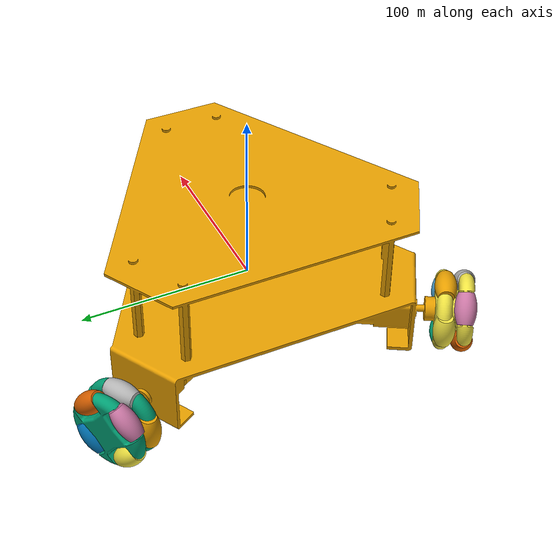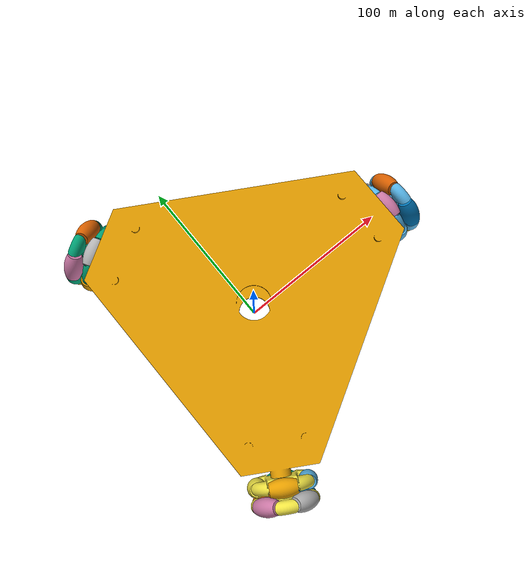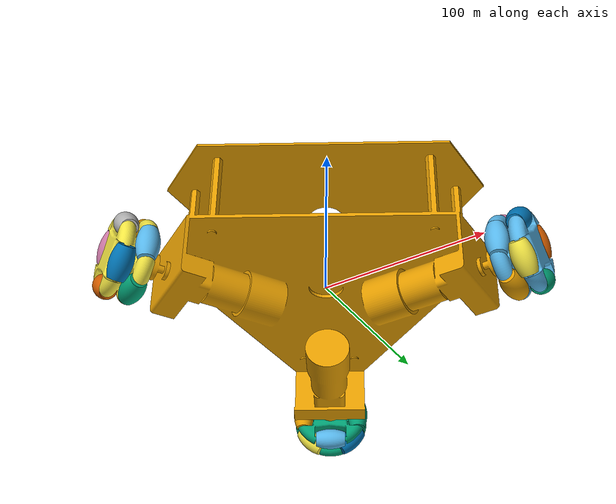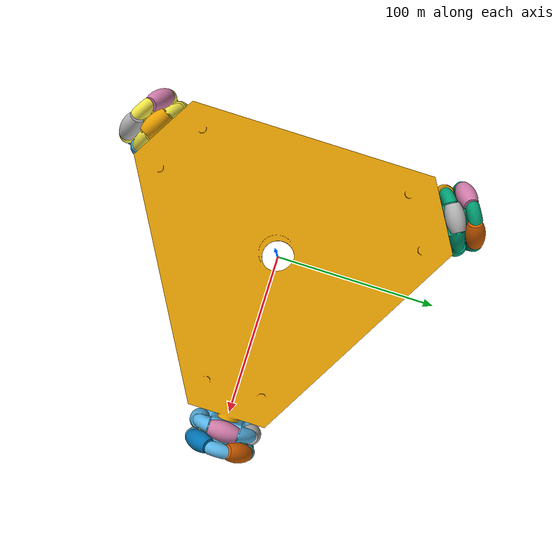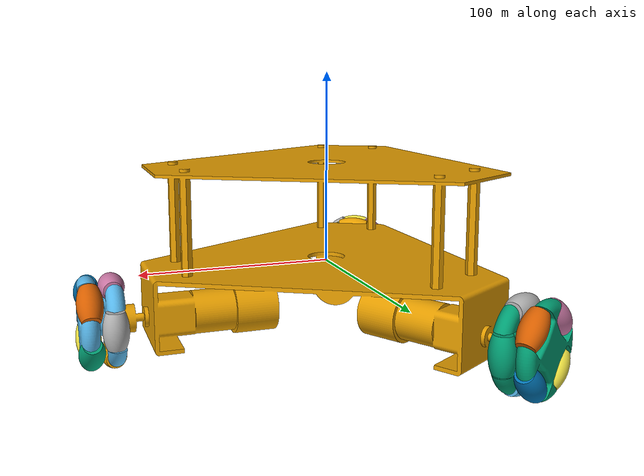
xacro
<?xml version="1.0" encoding="utf-8"?>
<robot name="robot" xmlns:xacro="http://www.ros.org/wiki/xacro">

  <gazebo>
    <plugin name="gazebo_ros_control" filename="libgazebo_ros_control.so">
      <robotNamespace>/omnirobot</robotNamespace>
    </plugin>
  </gazebo>

  <link name="base_link">
    <visual>
      <geometry>
        <mesh filename="package://holonome_description/meshes/Bati.stl"/>
      </geometry>
      <origin xyz="0 0 0" rpy="${pi/2} 0 ${pi/2 + 2*pi/3}"/>
    </visual>

    <collision>
      <geometry>
        <mesh filename="package://holonome_description/meshes/Bati.stl"/>
      </geometry>
      <origin xyz="0 0 0" rpy="${pi/2} 0 ${pi/2 + 2*pi/3}"/>
    </collision>

  </link>

  <link name="wheel_front">
    <visual>
      <geometry>
        <mesh filename="package://holonome_description/meshes/roue.stl"/>
      </geometry>
      <origin xyz="0 0 0" rpy="0 ${pi/2} 0"/>
    </visual>
    <collision>
      <geometry>
        <mesh filename="package://holonome_description/meshes/roue.stl"/>
      </geometry>
      <origin xyz="117.2 0 -21.4" rpy="0 ${pi/2} 0"/>
    </collision>
  </link>

  <joint name="wheel_front_joint" type="continuous">
    <parent link="base_link"/>
    <child link="wheel_front"/>
    <origin xyz="117.2 0 -21.4" rpy="0 0 0"/>
    <axis xyz="1 0 0"/>
  </joint>

  <joint name="rouleau_front1_joint" type="continuous">
    <parent link="wheel_front"/>
    <child link="rouleau_front1"/>
    <origin xyz="7.4 12.24 -12.24" rpy="0 0 0"/>
    <axis xyz="0 1 1"/>
  </joint>
  <link name="rouleau_front1">
    <visual>
      <geometry>
        <mesh filename="package://holonome_description/meshes/rouleau.stl"/>
      </geometry>
      <origin xyz="0 0 0" rpy="0 ${pi/4} ${-pi/2}"/>
    </visual>
    <collision>
      <geometry>
        <mesh filename="package://holonome_description/meshes/rouleau.stl"/>
      </geometry>
      <origin xyz="0 0 0" rpy="0 ${pi/4} ${-pi/2}"/>
    </collision>
  </link>

  <joint name="rouleau_front2_joint" type="continuous">
    <parent link="wheel_front"/>
    <child link="rouleau_front2"/>
    <origin xyz="7.4 -12.24 -12.24" rpy="0 0 0"/>
    <axis xyz="0 1 -1"/>
  </joint>
  <link name="rouleau_front2">
    <visual>
      <geometry>
        <mesh filename="package://holonome_description/meshes/rouleau.stl"/>
      </geometry>
      <origin xyz="0 0 0" rpy="0 ${-pi/4} ${-pi/2}"/>
    </visual>
    <collision>
      <geometry>
        <mesh filename="package://holonome_description/meshes/rouleau.stl"/>
      </geometry>
      <origin xyz="0 0 0" rpy="0 ${-pi/4} ${-pi/2}"/>
    </collision>
  </link>

  <joint name="rouleau_front3_joint" type="continuous">
    <parent link="wheel_front"/>
    <child link="rouleau_front3"/>
    <origin xyz="7.4 -12.24 12.24" rpy="0 0 0"/>
    <axis xyz="0 1 1"/>
  </joint>
  <link name="rouleau_front3">
    <visual>
      <geometry>
        <mesh filename="package://holonome_description/meshes/rouleau.stl"/>
      </geometry>
      <origin xyz="0 0 0" rpy="0 ${pi/4} ${-pi/2}"/>
    </visual>
    <collision>
      <geometry>
        <mesh filename="package://holonome_description/meshes/rouleau.stl"/>
      </geometry>
      <origin xyz="0 0 0" rpy="0 ${pi/4} ${-pi/2}"/>
    </collision>
  </link>

  <joint name="rouleau_front4_joint" type="continuous">
    <parent link="wheel_front"/>
    <child link="rouleau_front4"/>
    <origin xyz="7.4 12.24 12.24" rpy="0 0 0"/>
    <axis xyz="0 1 -1"/>
  </joint>
  <link name="rouleau_front4">
    <visual>
      <geometry>
        <mesh filename="package://holonome_description/meshes/rouleau.stl"/>
      </geometry>
      <origin xyz="0 0 0" rpy="0 ${-pi/4} ${-pi/2}"/>
    </visual>
    <collision>
      <geometry>
        <mesh filename="package://holonome_description/meshes/rouleau.stl"/>
      </geometry>
      <origin xyz="0 0 0" rpy="0 ${pi/4} ${-pi/2}"/>
    </collision>
  </link>

  <joint name="rouleau_front5_joint" type="continuous">
    <parent link="wheel_front"/>
    <child link="rouleau_front5"/>
    <origin xyz="-3.8 0 17.31" rpy="0 0 0"/>
    <axis xyz="0 1 0"/>
  </joint>
  <link name="rouleau_front5">
    <visual>
      <geometry>
        <mesh filename="package://holonome_description/meshes/rouleau.stl"/>
      </geometry>
      <origin xyz="0 0 0" rpy="0 0 ${pi/2}"/>
    </visual>
    <collision>
      <geometry>
        <mesh filename="package://holonome_description/meshes/rouleau.stl"/>
      </geometry>
      <origin xyz="0 0 0" rpy="0 0 ${pi/2}"/>
    </collision>
  </link>

  <joint name="rouleau_front6_joint" type="continuous">
    <parent link="wheel_front"/>
    <child link="rouleau_front6"/>
    <origin xyz="-3.8 17.31 0" rpy="0 0 0"/>
    <axis xyz="0 0 1"/>
  </joint>
  <link name="rouleau_front6">
    <visual>
      <geometry>
        <mesh filename="package://holonome_description/meshes/rouleau.stl"/>
      </geometry>
      <origin xyz="0 0 0" rpy="0 ${pi/2} 0"/>
    </visual>
    <collision>
      <geometry>
        <mesh filename="package://holonome_description/meshes/rouleau.stl"/>
      </geometry>
      <origin xyz="0 0 0" rpy="0 ${pi/2} 0"/>
    </collision>
  </link>

  <joint name="rouleau_front7_joint" type="continuous">
    <parent link="wheel_front"/>
    <child link="rouleau_front7"/>
    <origin xyz="-3.8 0 -17.31" rpy="0 0 0"/>
    <axis xyz="0 1 0"/>
  </joint>
  <link name="rouleau_front7">
    <visual>
      <geometry>
        <mesh filename="package://holonome_description/meshes/rouleau.stl"/>
      </geometry>
      <origin xyz="0 0 0" rpy="0 0 ${pi/2}"/>
    </visual>
    <collision>
      <geometry>
        <mesh filename="package://holonome_description/meshes/rouleau.stl"/>
      </geometry>
      <origin xyz="0 0 0" rpy="0 0 ${pi/2}"/>
    </collision>
  </link>

  <joint name="rouleau_front8_joint" type="continuous">
    <parent link="wheel_front"/>
    <child link="rouleau_front8"/>
    <origin xyz="-3.8 -17.31 0" rpy="0 0 0"/>
    <axis xyz="0 0 1"/>
  </joint>
  <link name="rouleau_front8">
    <visual>
      <geometry>
        <mesh filename="package://holonome_description/meshes/rouleau.stl"/>
      </geometry>
      <origin xyz="0 0 0" rpy="0 ${pi/2} 0"/>
    </visual>
    <collision>
      <geometry>
        <mesh filename="package://holonome_description/meshes/rouleau.stl"/>
      </geometry>
      <origin xyz="0 0 0" rpy="0 ${pi/2} 0"/>
    </collision>
  </link>

  <joint name="wheel_left_joint" type="continuous">
    <parent link="base_link"/>
    <child link="wheel_left"/>
    <origin xyz="-58.6 101.5 -21.4" rpy="0 0 ${pi*2/3}"/>
    <axis xyz="${cos(pi*2/3)} ${sin(pi*2/3)} 0"/>
  </joint>

  <link name="wheel_left">
    <visual>
      <geometry>
        <mesh filename="package://holonome_description/meshes/roue.stl"/>
      </geometry>
      <origin xyz="0 0 0" rpy="0 ${pi/2} 0"/>
    </visual>
    <collision>
      <geometry>
        <mesh filename="package://holonome_description/meshes/roue.stl"/>
      </geometry>
      <origin xyz="0 0 0" rpy="0 ${pi/2} 0"/>
    </collision>
  </link>

  <joint name="rouleau_left1_joint" type="continuous">
    <parent link="wheel_left"/>
    <child link="rouleau_left1"/>
    <origin xyz="7.4 12.24 -12.24" rpy="0 0 0"/>
    <axis xyz="0 1 1"/>
  </joint>
  <link name="rouleau_left1">
    <visual>
      <geometry>
        <mesh filename="package://holonome_description/meshes/rouleau.stl"/>
      </geometry>
      <origin xyz="0 0 0" rpy="0 ${pi/4} ${-pi/2}"/>
    </visual>
    <collision>
      <geometry>
        <mesh filename="package://holonome_description/meshes/rouleau.stl"/>
      </geometry>
      <origin xyz="0 0 0" rpy="0 ${pi/4} ${-pi/2}"/>
    </collision>
  </link>

  <joint name="rouleau_left2_joint" type="continuous">
    <parent link="wheel_left"/>
    <child link="rouleau_left2"/>
    <origin xyz="7.4 -12.24 -12.24" rpy="0 0 0"/>
    <axis xyz="0 1 -1"/>
  </joint>
  <link name="rouleau_left2">
    <visual>
      <geometry>
        <mesh filename="package://holonome_description/meshes/rouleau.stl"/>
      </geometry>
      <origin xyz="0 0 0" rpy="0 ${-pi/4} ${-pi/2}"/>
    </visual>
    <collision>
      <geometry>
        <mesh filename="package://holonome_description/meshes/rouleau.stl"/>
      </geometry>
      <origin xyz="0 0 0" rpy="0 ${-pi/4} ${-pi/2}"/>
    </collision>
  </link>

  <joint name="rouleau_left3_joint" type="continuous">
    <parent link="wheel_left"/>
    <child link="rouleau_left3"/>
    <origin xyz="7.4 -12.24 12.24" rpy="0 0 0"/>
    <axis xyz="0 1 1"/>
  </joint>
  <link name="rouleau_left3">
    <visual>
      <geometry>
        <mesh filename="package://holonome_description/meshes/rouleau.stl"/>
      </geometry>
      <origin xyz="0 0 0" rpy="0 ${pi/4} ${-pi/2}"/>
    </visual>
    <collision>
      <geometry>
        <mesh filename="package://holonome_description/meshes/rouleau.stl"/>
      </geometry>
      <origin xyz="0 0 0" rpy="0 ${pi/4} ${-pi/2}"/>
    </collision>
  </link>

  <joint name="rouleau_left4_joint" type="continuous">
    <parent link="wheel_left"/>
    <child link="rouleau_left4"/>
    <origin xyz="7.4 12.24 12.24" rpy="0 0 0"/>
    <axis xyz="0 1 -1"/>
  </joint>
  <link name="rouleau_left4">
    <visual>
      <geometry>
        <mesh filename="package://holonome_description/meshes/rouleau.stl"/>
      </geometry>
      <origin xyz="0 0 0" rpy="0 ${-pi/4} ${-pi/2}"/>
    </visual>
    <collision>
      <geometry>
        <mesh filename="package://holonome_description/meshes/rouleau.stl"/>
      </geometry>
      <origin xyz="0 0 0" rpy="0 ${pi/4} ${-pi/2}"/>
    </collision>
  </link>

  <joint name="rouleau_left5_joint" type="continuous">
    <parent link="wheel_left"/>
    <child link="rouleau_left5"/>
    <origin xyz="-3.8 0 17.31" rpy="0 0 0"/>
    <axis xyz="0 1 0"/>
  </joint>
  <link name="rouleau_left5">
    <visual>
      <geometry>
        <mesh filename="package://holonome_description/meshes/rouleau.stl"/>
      </geometry>
      <origin xyz="0 0 0" rpy="0 0 ${pi/2}"/>
    </visual>
    <collision>
      <geometry>
        <mesh filename="package://holonome_description/meshes/rouleau.stl"/>
      </geometry>
      <origin xyz="0 0 0" rpy="0 0 ${pi/2}"/>
    </collision>
  </link>

  <joint name="rouleau_left6_joint" type="continuous">
    <parent link="wheel_left"/>
    <child link="rouleau_left6"/>
    <origin xyz="-3.8 17.31 0" rpy="0 0 0"/>
    <axis xyz="0 0 1"/>
  </joint>
  <link name="rouleau_left6">
    <visual>
      <geometry>
        <mesh filename="package://holonome_description/meshes/rouleau.stl"/>
      </geometry>
      <origin xyz="0 0 0" rpy="0 ${pi/2} 0"/>
    </visual>
    <collision>
      <geometry>
        <mesh filename="package://holonome_description/meshes/rouleau.stl"/>
      </geometry>
      <origin xyz="0 0 0" rpy="0 ${pi/2} 0"/>
    </collision>
  </link>

  <joint name="rouleau_left7_joint" type="continuous">
    <parent link="wheel_left"/>
    <child link="rouleau_left7"/>
    <origin xyz="-3.8 0 -17.31" rpy="0 0 0"/>
    <axis xyz="0 1 0"/>
  </joint>
  <link name="rouleau_left7">
    <visual>
      <geometry>
        <mesh filename="package://holonome_description/meshes/rouleau.stl"/>
      </geometry>
      <origin xyz="0 0 0" rpy="0 0 ${pi/2}"/>
    </visual>
    <collision>
      <geometry>
        <mesh filename="package://holonome_description/meshes/rouleau.stl"/>
      </geometry>
      <origin xyz="0 0 0" rpy="0 0 ${pi/2}"/>
    </collision>
  </link>

  <joint name="rouleau_left8_joint" type="continuous">
    <parent link="wheel_left"/>
    <child link="rouleau_left8"/>
    <origin xyz="-3.8 -17.31 0" rpy="0 0 0"/>
    <axis xyz="0 0 1"/>
  </joint>
  <link name="rouleau_left8">
    <visual>
      <geometry>
        <mesh filename="package://holonome_description/meshes/rouleau.stl"/>
      </geometry>
      <origin xyz="0 0 0" rpy="0 ${pi/2} 0"/>
    </visual>
    <collision>
      <geometry>
        <mesh filename="package://holonome_description/meshes/rouleau.stl"/>
      </geometry>
      <origin xyz="0 0 0" rpy="0 ${pi/2} 0"/>
    </collision>
  </link>

  <joint name="wheel_right_joint" type="continuous">
    <parent link="base_link"/>
    <child link="wheel_right"/>
    <origin xyz="-58.6 -101.5 -21.4" rpy="0 0 ${-pi*2/3}"/>
    <axis xyz="${cos(pi*2/3)} ${sin(pi*2/3)} 0"/>
  </joint>

  <link name="wheel_right">
    <visual>
      <geometry>
        <mesh filename="package://holonome_description/meshes/roue.stl"/>
      </geometry>
      <origin xyz="0 0 0" rpy="0 ${pi/2} 0"/>
    </visual>
    <collision>
      <geometry>
        <mesh filename="package://holonome_description/meshes/roue.stl"/>
      </geometry>
      <origin xyz="0 0 0" rpy="0 ${pi/2} 0"/>
    </collision>
  </link>

  <joint name="rouleau_right1_joint" type="continuous">
    <parent link="wheel_right"/>
    <child link="rouleau_right1"/>
    <origin xyz="7.4 12.24 -12.24" rpy="0 0 0"/>
    <axis xyz="0 1 1"/>
  </joint>
  <link name="rouleau_right1">
    <visual>
      <geometry>
        <mesh filename="package://holonome_description/meshes/rouleau.stl"/>
      </geometry>
      <origin xyz="0 0 0" rpy="0 ${pi/4} ${-pi/2}"/>
    </visual>
    <collision>
      <geometry>
        <mesh filename="package://holonome_description/meshes/rouleau.stl"/>
      </geometry>
      <origin xyz="0 0 0" rpy="0 ${pi/4} ${-pi/2}"/>
    </collision>
  </link>

  <joint name="rouleau_right2_joint" type="continuous">
    <parent link="wheel_right"/>
    <child link="rouleau_right2"/>
    <origin xyz="7.4 -12.24 -12.24" rpy="0 0 0"/>
    <axis xyz="0 1 -1"/>
  </joint>
  <link name="rouleau_right2">
    <visual>
      <geometry>
        <mesh filename="package://holonome_description/meshes/rouleau.stl"/>
      </geometry>
      <origin xyz="0 0 0" rpy="0 ${-pi/4} ${-pi/2}"/>
    </visual>
    <collision>
      <geometry>
        <mesh filename="package://holonome_description/meshes/rouleau.stl"/>
      </geometry>
      <origin xyz="0 0 0" rpy="0 ${-pi/4} ${-pi/2}"/>
    </collision>
  </link>

  <joint name="rouleau_right3_joint" type="continuous">
    <parent link="wheel_right"/>
    <child link="rouleau_right3"/>
    <origin xyz="7.4 -12.24 12.24" rpy="0 0 0"/>
    <axis xyz="0 1 1"/>
  </joint>
  <link name="rouleau_right3">
    <visual>
      <geometry>
        <mesh filename="package://holonome_description/meshes/rouleau.stl"/>
      </geometry>
      <origin xyz="0 0 0" rpy="0 ${pi/4} ${-pi/2}"/>
    </visual>
    <collision>
      <geometry>
        <mesh filename="package://holonome_description/meshes/rouleau.stl"/>
      </geometry>
      <origin xyz="0 0 0" rpy="0 ${pi/4} ${-pi/2}"/>
    </collision>
  </link>

  <joint name="rouleau_right4_joint" type="continuous">
    <parent link="wheel_right"/>
    <child link="rouleau_right4"/>
    <origin xyz="7.4 12.24 12.24" rpy="0 0 0"/>
    <axis xyz="0 1 -1"/>
  </joint>
  <link name="rouleau_right4">
    <visual>
      <geometry>
        <mesh filename="package://holonome_description/meshes/rouleau.stl"/>
      </geometry>
      <origin xyz="0 0 0" rpy="0 ${-pi/4} ${-pi/2}"/>
    </visual>
    <collision>
      <geometry>
        <mesh filename="package://holonome_description/meshes/rouleau.stl"/>
      </geometry>
      <origin xyz="0 0 0" rpy="0 ${pi/4} ${-pi/2}"/>
    </collision>
  </link>

  <joint name="rouleau_right5_joint" type="continuous">
    <parent link="wheel_right"/>
    <child link="rouleau_right5"/>
    <origin xyz="-3.8 0 17.31" rpy="0 0 0"/>
    <axis xyz="0 1 0"/>
  </joint>
  <link name="rouleau_right5">
    <visual>
      <geometry>
        <mesh filename="package://holonome_description/meshes/rouleau.stl"/>
      </geometry>
      <origin xyz="0 0 0" rpy="0 0 ${pi/2}"/>
    </visual>
    <collision>
      <geometry>
        <mesh filename="package://holonome_description/meshes/rouleau.stl"/>
      </geometry>
      <origin xyz="0 0 0" rpy="0 0 ${pi/2}"/>
    </collision>
  </link>

  <joint name="rouleau_right6_joint" type="continuous">
    <parent link="wheel_right"/>
    <child link="rouleau_right6"/>
    <origin xyz="-3.8 17.31 0" rpy="0 0 0"/>
    <axis xyz="0 0 1"/>
  </joint>
  <link name="rouleau_right6">
    <visual>
      <geometry>
        <mesh filename="package://holonome_description/meshes/rouleau.stl"/>
      </geometry>
      <origin xyz="0 0 0" rpy="0 ${pi/2} 0"/>
    </visual>
    <collision>
      <geometry>
        <mesh filename="package://holonome_description/meshes/rouleau.stl"/>
      </geometry>
      <origin xyz="0 0 0" rpy="0 ${pi/2} 0"/>
    </collision>
  </link>

  <joint name="rouleau_right7_joint" type="continuous">
    <parent link="wheel_right"/>
    <child link="rouleau_right7"/>
    <origin xyz="-3.8 0 -17.31" rpy="0 0 0"/>
    <axis xyz="0 1 0"/>
  </joint>
  <link name="rouleau_right7">
    <visual>
      <geometry>
        <mesh filename="package://holonome_description/meshes/rouleau.stl"/>
      </geometry>
      <origin xyz="0 0 0" rpy="0 0 ${pi/2}"/>
    </visual>
    <collision>
      <geometry>
        <mesh filename="package://holonome_description/meshes/rouleau.stl"/>
      </geometry>
      <origin xyz="0 0 0" rpy="0 0 ${pi/2}"/>
    </collision>
  </link>

  <joint name="rouleau_right8_joint" type="continuous">
    <parent link="wheel_right"/>
    <child link="rouleau_right8"/>
    <origin xyz="-3.8 -17.31 0" rpy="0 0 0"/>
    <axis xyz="0 0 1"/>
  </joint>
  <link name="rouleau_right8">
    <visual>
      <geometry>
        <mesh filename="package://holonome_description/meshes/rouleau.stl"/>
      </geometry>
      <origin xyz="0 0 0" rpy="0 ${pi/2} 0"/>
    </visual>
    <collision>
      <geometry>
        <mesh filename="package://holonome_description/meshes/rouleau.stl"/>
      </geometry>
      <origin xyz="0 0 0" rpy="0 ${pi/2} 0"/>
    </collision>
  </link>

  <transmission name="trans_front">
    <type>transmission_interface/SimpleTransmission</type>
    <joint name="wheel_front_joint">
      <hardwareInterface>hardware_interface/VelocityJointInterface</hardwareInterface>
    </joint>
    <actuator name="motor_front">
      <hardwareInterface>hardware_interface/VelocityJointInterface</hardwareInterface>
      <mechanicalReduction>1</mechanicalReduction>
    </actuator>
  </transmission>

  <transmission name="trans_left">
    <type>transmission_interface/SimpleTransmission</type>
    <joint name="wheel_left_joint">
      <hardwareInterface>hardware_interface/VelocityJointInterface</hardwareInterface>
    </joint>
    <actuator name="motor_left">
      <hardwareInterface>hardware_interface/VelocityJointInterface</hardwareInterface>
      <mechanicalReduction>1</mechanicalReduction>
    </actuator>
  </transmission>

  <transmission name="trans_right">
    <type>transmission_interface/SimpleTransmission</type>
    <joint name="wheel_right_joint">
      <hardwareInterface>hardware_interface/VelocityJointInterface</hardwareInterface>
    </joint>
    <actuator name="motor_right">
      <hardwareInterface>hardware_interface/VelocityJointInterface</hardwareInterface>
      <mechanicalReduction>1</mechanicalReduction>
    </actuator>
  </transmission>

</robot>
